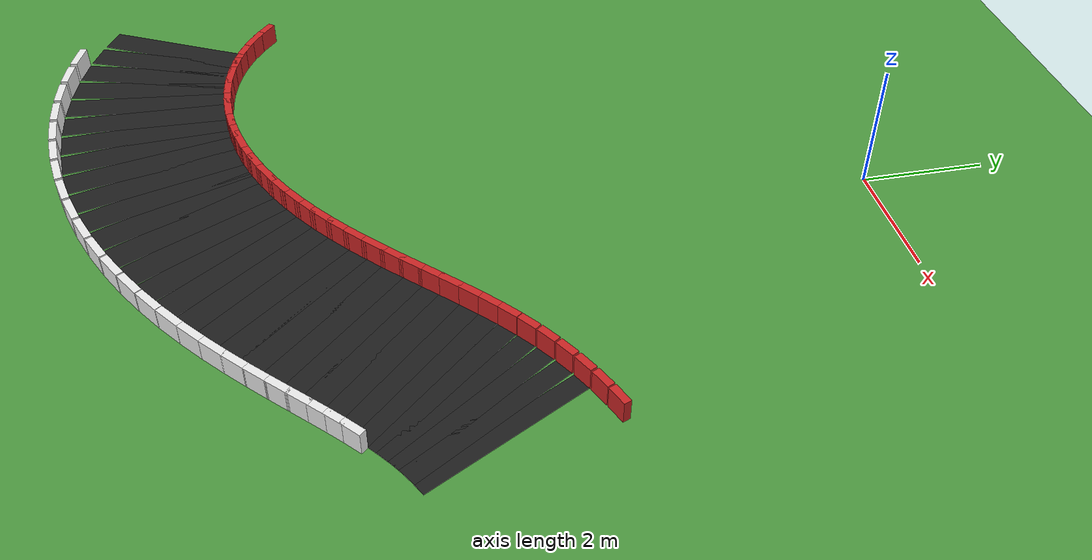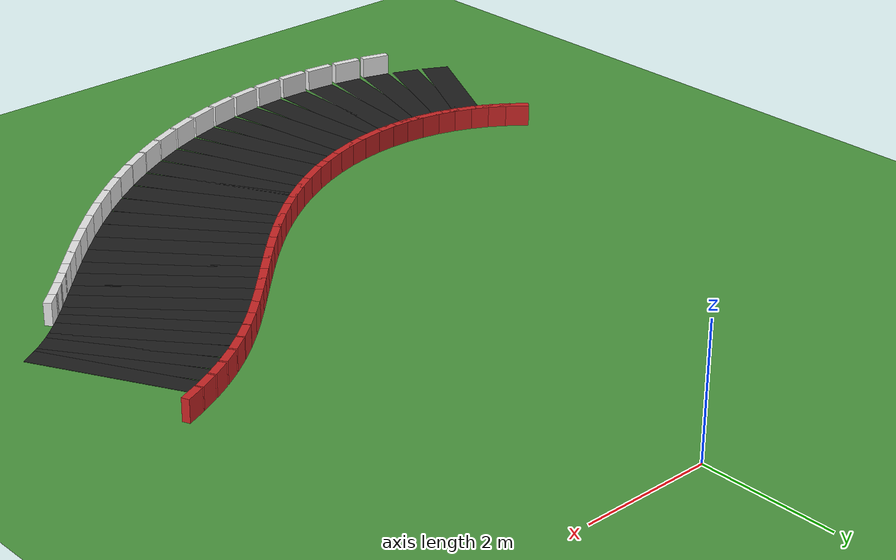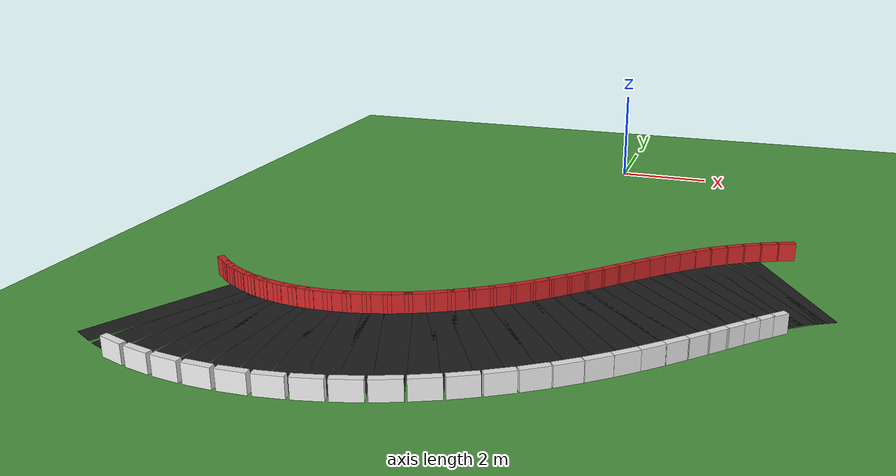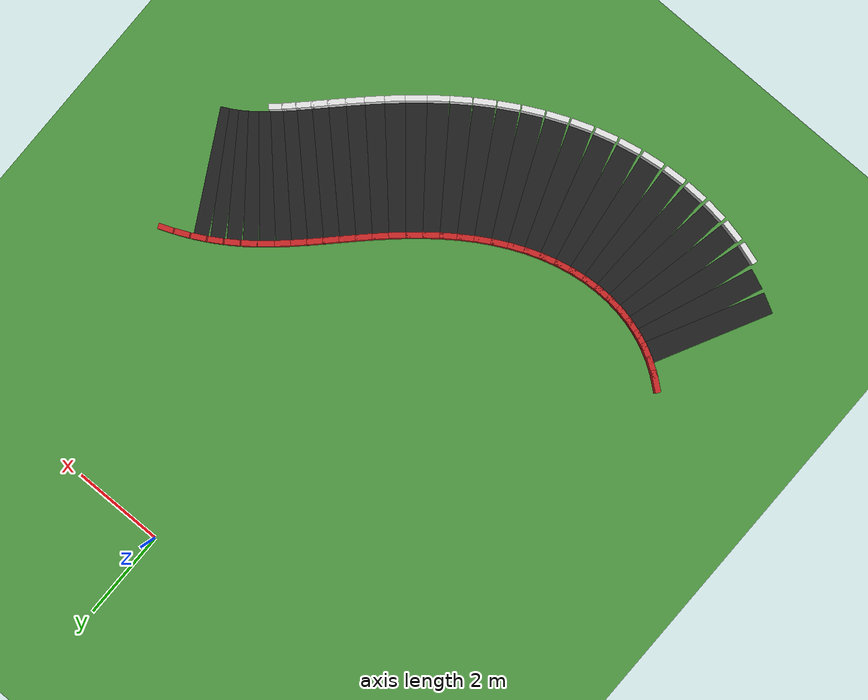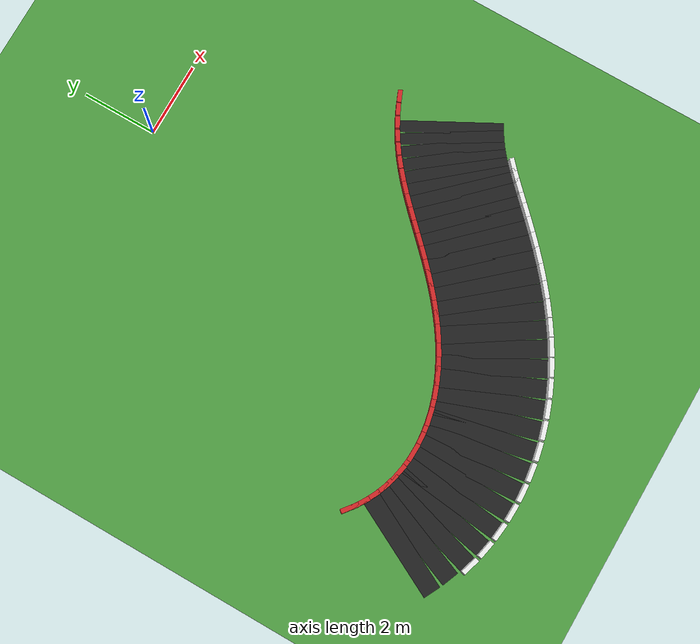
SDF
<sdf version="1.7">
 <world name="rl_track">
  <include><uri>model://sun</uri></include>
  <model name="ground">
   <static>true</static>
   <link name="link">
    <collision name="collision">
     <geometry><plane><normal>0 0 1</normal><size>40 40</size></plane></geometry>
    </collision>
    <visual name="visual">
     <geometry><plane><normal>0 0 1</normal><size>40 40</size></plane></geometry>
     <material>
      <script><uri>file://media/materials/scripts/gazebo.material</uri><name>Gazebo/Grass</name></script>
     </material>
    </visual>
   </link>
  </model>
  <model name="track">
   <static>true</static>
   <link name="outer_wall_118">
    <pose>-5.812078 -9.177187 0.175000 0 0 -0.663664682</pose>
    <collision name="collision">
     <geometry><box><size>0.479884 0.120000 0.350000</size></box></geometry>
     <surface><contact><ode><kp>1000000</kp><kd>10</kd></ode></contact></surface>
    </collision>
    <visual name="visual">
     <geometry><box><size>0.479884 0.120000 0.350000</size></box></geometry>
     <material>
      <script><uri>file://media/materials/scripts/gazebo.material</uri><name>Gazebo/Red</name></script>
     </material>
    </visual>
   </link>
   <link name="outer_wall_119">
    <pose>-5.569307 -9.349435 0.175000 0 0 -0.570401477</pose>
    <collision name="collision">
     <geometry><box><size>0.479294 0.120000 0.350000</size></box></geometry>
     <surface><contact><ode><kp>1000000</kp><kd>10</kd></ode></contact></surface>
    </collision>
    <visual name="visual">
     <geometry><box><size>0.479294 0.120000 0.350000</size></box></geometry>
     <material>
      <script><uri>file://media/materials/scripts/gazebo.material</uri><name>Gazebo/Red</name></script>
     </material>
    </visual>
   </link>
   <link name="road_120">
    <pose>-5.959293 -10.750622 0.003000 0 0 -0.476796075</pose>
    <visual name="visual">
     <geometry><box><size>0.469294 2.700000 0.006000</size></box></geometry>
     <material>
      <script><uri>file://media/materials/scripts/gazebo.material</uri><name>Gazebo/Black</name></script>
     </material>
    </visual>
   </link>
   <link name="outer_wall_120">
    <pose>-5.312194 -9.497879 0.175000 0 0 -0.476796075</pose>
    <collision name="collision">
     <geometry><box><size>0.479294 0.120000 0.350000</size></box></geometry>
     <surface><contact><ode><kp>1000000</kp><kd>10</kd></ode></contact></surface>
    </collision>
    <visual name="visual">
     <geometry><box><size>0.479294 0.120000 0.350000</size></box></geometry>
     <material>
      <script><uri>file://media/materials/scripts/gazebo.material</uri><name>Gazebo/Red</name></script>
     </material>
    </visual>
   </link>
   <link name="road_121">
    <pose>-5.569259 -10.929562 0.003000 0 0 -0.383532870</pose>
    <visual name="visual">
     <geometry><box><size>0.469884 2.700000 0.006000</size></box></geometry>
     <material>
      <script><uri>file://media/materials/scripts/gazebo.material</uri><name>Gazebo/Black</name></script>
     </material>
    </visual>
   </link>
   <link name="outer_wall_121">
    <pose>-5.041638 -9.622000 0.175000 0 0 -0.383532870</pose>
    <collision name="collision">
     <geometry><box><size>0.479884 0.120000 0.350000</size></box></geometry>
     <surface><contact><ode><kp>1000000</kp><kd>10</kd></ode></contact></surface>
    </collision>
    <visual name="visual">
     <geometry><box><size>0.479884 0.120000 0.350000</size></box></geometry>
     <material>
      <script><uri>file://media/materials/scripts/gazebo.material</uri><name>Gazebo/Red</name></script>
     </material>
    </visual>
   </link>
   <link name="road_122">
    <pose>-5.163503 -11.071882 0.003000 0 0 -0.291281226</pose>
    <visual name="visual">
     <geometry><box><size>0.471014 2.700000 0.006000</size></box></geometry>
     <material>
      <script><uri>file://media/materials/scripts/gazebo.material</uri><name>Gazebo/Black</name></script>
     </material>
    </visual>
   </link>
   <link name="inner_wall_122">
    <pose>-5.568427 -12.422488 0.175000 0 0 -0.291281226</pose>
    <collision name="collision">
     <geometry><box><size>0.481014 0.120000 0.350000</size></box></geometry>
     <surface><contact><ode><kp>1000000</kp><kd>10</kd></ode></contact></surface>
    </collision>
    <visual name="visual">
     <geometry><box><size>0.481014 0.120000 0.350000</size></box></geometry>
     <material>
      <script><uri>file://media/materials/scripts/gazebo.material</uri><name>Gazebo/White</name></script>
     </material>
    </visual>
   </link>
   <link name="outer_wall_122">
    <pose>-4.758580 -9.721276 0.175000 0 0 -0.291281226</pose>
    <collision name="collision">
     <geometry><box><size>0.481014 0.120000 0.350000</size></box></geometry>
     <surface><contact><ode><kp>1000000</kp><kd>10</kd></ode></contact></surface>
    </collision>
    <visual name="visual">
     <geometry><box><size>0.481014 0.120000 0.350000</size></box></geometry>
     <material>
      <script><uri>file://media/materials/scripts/gazebo.material</uri><name>Gazebo/Red</name></script>
     </material>
    </visual>
   </link>
   <link name="road_123">
    <pose>-4.745123 -11.176883 0.003000 0 0 -0.200667479</pose>
    <visual name="visual">
     <geometry><box><size>0.472582 2.700000 0.006000</size></box></geometry>
     <material>
      <script><uri>file://media/materials/scripts/gazebo.material</uri><name>Gazebo/Black</name></script>
     </material>
    </visual>
   </link>
   <link name="inner_wall_123">
    <pose>-5.026169 -12.558590 0.175000 0 0 -0.200667479</pose>
    <collision name="collision">
     <geometry><box><size>0.482582 0.120000 0.350000</size></box></geometry>
     <surface><contact><ode><kp>1000000</kp><kd>10</kd></ode></contact></surface>
    </collision>
    <visual name="visual">
     <geometry><box><size>0.482582 0.120000 0.350000</size></box></geometry>
     <material>
      <script><uri>file://media/materials/scripts/gazebo.material</uri><name>Gazebo/White</name></script>
     </material>
    </visual>
   </link>
   <link name="outer_wall_123">
    <pose>-4.464077 -9.795177 0.175000 0 0 -0.200667479</pose>
    <collision name="collision">
     <geometry><box><size>0.482582 0.120000 0.350000</size></box></geometry>
     <surface><contact><ode><kp>1000000</kp><kd>10</kd></ode></contact></surface>
    </collision>
    <visual name="visual">
     <geometry><box><size>0.482582 0.120000 0.350000</size></box></geometry>
     <material>
      <script><uri>file://media/materials/scripts/gazebo.material</uri><name>Gazebo/Red</name></script>
     </material>
    </visual>
   </link>
   <link name="road_124">
    <pose>-4.317315 -11.244328 0.003000 0 0 -0.112252660</pose>
    <visual name="visual">
     <geometry><box><size>0.474449 2.700000 0.006000</size></box></geometry>
     <material>
      <script><uri>file://media/materials/scripts/gazebo.material</uri><name>Gazebo/Black</name></script>
     </material>
    </visual>
   </link>
   <link name="inner_wall_124">
    <pose>-4.475259 -12.645454 0.175000 0 0 -0.112252660</pose>
    <collision name="collision">
     <geometry><box><size>0.484449 0.120000 0.350000</size></box></geometry>
     <surface><contact><ode><kp>1000000</kp><kd>10</kd></ode></contact></surface>
    </collision>
    <visual name="visual">
     <geometry><box><size>0.484449 0.120000 0.350000</size></box></geometry>
     <material>
      <script><uri>file://media/materials/scripts/gazebo.material</uri><name>Gazebo/White</name></script>
     </material>
    </visual>
   </link>
   <link name="outer_wall_124">
    <pose>-4.159371 -9.843202 0.175000 0 0 -0.112252660</pose>
    <collision name="collision">
     <geometry><box><size>0.484449 0.120000 0.350000</size></box></geometry>
     <surface><contact><ode><kp>1000000</kp><kd>10</kd></ode></contact></surface>
    </collision>
    <visual name="visual">
     <geometry><box><size>0.484449 0.120000 0.350000</size></box></geometry>
     <material>
      <script><uri>file://media/materials/scripts/gazebo.material</uri><name>Gazebo/Red</name></script>
     </material>
    </visual>
   </link>
   <link name="road_125">
    <pose>-3.883314 -11.274447 0.003000 0 0 -0.026518333</pose>
    <visual name="visual">
     <geometry><box><size>0.476441 2.700000 0.006000</size></box></geometry>
     <material>
      <script><uri>file://media/materials/scripts/gazebo.material</uri><name>Gazebo/Black</name></script>
     </material>
    </visual>
   </link>
   <link name="inner_wall_125">
    <pose>-3.920700 -12.683951 0.175000 0 0 -0.026518333</pose>
    <collision name="collision">
     <geometry><box><size>0.486441 0.120000 0.350000</size></box></geometry>
     <surface><contact><ode><kp>1000000</kp><kd>10</kd></ode></contact></surface>
    </collision>
    <visual name="visual">
     <geometry><box><size>0.486441 0.120000 0.350000</size></box></geometry>
     <material>
      <script><uri>file://media/materials/scripts/gazebo.material</uri><name>Gazebo/White</name></script>
     </material>
    </visual>
   </link>
   <link name="outer_wall_125">
    <pose>-3.845927 -9.864943 0.175000 0 0 -0.026518333</pose>
    <collision name="collision">
     <geometry><box><size>0.486441 0.120000 0.350000</size></box></geometry>
     <surface><contact><ode><kp>1000000</kp><kd>10</kd></ode></contact></surface>
    </collision>
    <visual name="visual">
     <geometry><box><size>0.486441 0.120000 0.350000</size></box></geometry>
     <material>
      <script><uri>file://media/materials/scripts/gazebo.material</uri><name>Gazebo/Red</name></script>
     </material>
    </visual>
   </link>
   <link name="road_126">
    <pose>-3.446336 -11.267935 0.003000 0 0 0.056138654</pose>
    <visual name="visual">
     <geometry><box><size>0.478358 2.700000 0.006000</size></box></geometry>
     <material>
      <script><uri>file://media/materials/scripts/gazebo.material</uri><name>Gazebo/Black</name></script>
     </material>
    </visual>
   </link>
   <link name="inner_wall_126">
    <pose>-3.367222 -12.675714 0.175000 0 0 0.056138654</pose>
    <collision name="collision">
     <geometry><box><size>0.488358 0.120000 0.350000</size></box></geometry>
     <surface><contact><ode><kp>1000000</kp><kd>10</kd></ode></contact></surface>
    </collision>
    <visual name="visual">
     <geometry><box><size>0.488358 0.120000 0.350000</size></box></geometry>
     <material>
      <script><uri>file://media/materials/scripts/gazebo.material</uri><name>Gazebo/White</name></script>
     </material>
    </visual>
   </link>
   <link name="outer_wall_126">
    <pose>-3.525450 -9.860156 0.175000 0 0 0.056138654</pose>
    <collision name="collision">
     <geometry><box><size>0.488358 0.120000 0.350000</size></box></geometry>
     <surface><contact><ode><kp>1000000</kp><kd>10</kd></ode></contact></surface>
    </collision>
    <visual name="visual">
     <geometry><box><size>0.488358 0.120000 0.350000</size></box></geometry>
     <material>
      <script><uri>file://media/materials/scripts/gazebo.material</uri><name>Gazebo/Red</name></script>
     </material>
    </visual>
   </link>
   <link name="road_127">
    <pose>-3.009519 -11.225940 0.003000 0 0 0.135403178</pose>
    <visual name="visual">
     <geometry><box><size>0.479992 2.700000 0.006000</size></box></geometry>
     <material>
      <script><uri>file://media/materials/scripts/gazebo.material</uri><name>Gazebo/Black</name></script>
     </material>
    </visual>
   </link>
   <link name="inner_wall_127">
    <pose>-2.819184 -12.623034 0.175000 0 0 0.135403178</pose>
    <collision name="collision">
     <geometry><box><size>0.489992 0.120000 0.350000</size></box></geometry>
     <surface><contact><ode><kp>1000000</kp><kd>10</kd></ode></contact></surface>
    </collision>
    <visual name="visual">
     <geometry><box><size>0.489992 0.120000 0.350000</size></box></geometry>
     <material>
      <script><uri>file://media/materials/scripts/gazebo.material</uri><name>Gazebo/White</name></script>
     </material>
    </visual>
   </link>
   <link name="outer_wall_127">
    <pose>-3.199855 -9.828846 0.175000 0 0 0.135403178</pose>
    <collision name="collision">
     <geometry><box><size>0.489992 0.120000 0.350000</size></box></geometry>
     <surface><contact><ode><kp>1000000</kp><kd>10</kd></ode></contact></surface>
    </collision>
    <visual name="visual">
     <geometry><box><size>0.489992 0.120000 0.350000</size></box></geometry>
     <material>
      <script><uri>file://media/materials/scripts/gazebo.material</uri><name>Gazebo/Red</name></script>
     </material>
    </visual>
   </link>
   <link name="road_128">
    <pose>-2.575865 -11.150041 0.003000 0 0 0.211032286</pose>
    <visual name="visual">
     <geometry><box><size>0.481129 2.700000 0.006000</size></box></geometry>
     <material>
      <script><uri>file://media/materials/scripts/gazebo.material</uri><name>Gazebo/Black</name></script>
     </material>
    </visual>
   </link>
   <link name="inner_wall_128">
    <pose>-2.280514 -12.528761 0.175000 0 0 0.211032286</pose>
    <collision name="collision">
     <geometry><box><size>0.491129 0.120000 0.350000</size></box></geometry>
     <surface><contact><ode><kp>1000000</kp><kd>10</kd></ode></contact></surface>
    </collision>
    <visual name="visual">
     <geometry><box><size>0.491129 0.120000 0.350000</size></box></geometry>
     <material>
      <script><uri>file://media/materials/scripts/gazebo.material</uri><name>Gazebo/White</name></script>
     </material>
    </visual>
   </link>
   <link name="outer_wall_128">
    <pose>-2.871217 -9.771322 0.175000 0 0 0.211032286</pose>
    <collision name="collision">
     <geometry><box><size>0.491129 0.120000 0.350000</size></box></geometry>
     <surface><contact><ode><kp>1000000</kp><kd>10</kd></ode></contact></surface>
    </collision>
    <visual name="visual">
     <geometry><box><size>0.491129 0.120000 0.350000</size></box></geometry>
     <material>
      <script><uri>file://media/materials/scripts/gazebo.material</uri><name>Gazebo/Red</name></script>
     </material>
    </visual>
   </link>
   <link name="road_129">
    <pose>-2.148186 -11.042223 0.003000 0 0 0.282841160</pose>
    <visual name="visual">
     <geometry><box><size>0.481562 2.700000 0.006000</size></box></geometry>
     <material>
      <script><uri>file://media/materials/scripts/gazebo.material</uri><name>Gazebo/Black</name></script>
     </material>
    </visual>
   </link>
   <link name="inner_wall_129">
    <pose>-1.754676 -12.396199 0.175000 0 0 0.282841160</pose>
    <collision name="collision">
     <geometry><box><size>0.491562 0.120000 0.350000</size></box></geometry>
     <surface><contact><ode><kp>1000000</kp><kd>10</kd></ode></contact></surface>
    </collision>
    <visual name="visual">
     <geometry><box><size>0.491562 0.120000 0.350000</size></box></geometry>
     <material>
      <script><uri>file://media/materials/scripts/gazebo.material</uri><name>Gazebo/White</name></script>
     </material>
    </visual>
   </link>
   <link name="outer_wall_129">
    <pose>-2.541695 -9.688247 0.175000 0 0 0.282841160</pose>
    <collision name="collision">
     <geometry><box><size>0.491562 0.120000 0.350000</size></box></geometry>
     <surface><contact><ode><kp>1000000</kp><kd>10</kd></ode></contact></surface>
    </collision>
    <visual name="visual">
     <geometry><box><size>0.491562 0.120000 0.350000</size></box></geometry>
     <material>
      <script><uri>file://media/materials/scripts/gazebo.material</uri><name>Gazebo/Red</name></script>
     </material>
    </visual>
   </link>
   <link name="road_130">
    <pose>-1.729052 -10.904839 0.003000 0 0 0.350686587</pose>
    <visual name="visual">
     <geometry><box><size>0.481097 2.700000 0.006000</size></box></geometry>
     <material>
      <script><uri>file://media/materials/scripts/gazebo.material</uri><name>Gazebo/Black</name></script>
     </material>
    </visual>
   </link>
   <link name="inner_wall_130">
    <pose>-1.244657 -12.229022 0.175000 0 0 0.350686587</pose>
    <collision name="collision">
     <geometry><box><size>0.491097 0.120000 0.350000</size></box></geometry>
     <surface><contact><ode><kp>1000000</kp><kd>10</kd></ode></contact></surface>
    </collision>
    <visual name="visual">
     <geometry><box><size>0.491097 0.120000 0.350000</size></box></geometry>
     <material>
      <script><uri>file://media/materials/scripts/gazebo.material</uri><name>Gazebo/White</name></script>
     </material>
    </visual>
   </link>
   <link name="outer_wall_130">
    <pose>-2.213447 -9.580655 0.175000 0 0 0.350686587</pose>
    <collision name="collision">
     <geometry><box><size>0.491097 0.120000 0.350000</size></box></geometry>
     <surface><contact><ode><kp>1000000</kp><kd>10</kd></ode></contact></surface>
    </collision>
    <visual name="visual">
     <geometry><box><size>0.491097 0.120000 0.350000</size></box></geometry>
     <material>
      <script><uri>file://media/materials/scripts/gazebo.material</uri><name>Gazebo/Red</name></script>
     </material>
    </visual>
   </link>
   <link name="road_131">
    <pose>-1.320752 -10.740568 0.003000 0 0 0.414449527</pose>
    <visual name="visual">
     <geometry><box><size>0.479564 2.700000 0.006000</size></box></geometry>
     <material>
      <script><uri>file://media/materials/scripts/gazebo.material</uri><name>Gazebo/Black</name></script>
     </material>
    </visual>
   </link>
   <link name="inner_wall_131">
    <pose>-0.752964 -12.031194 0.175000 0 0 0.414449527</pose>
    <collision name="collision">
     <geometry><box><size>0.489564 0.120000 0.350000</size></box></geometry>
     <surface><contact><ode><kp>1000000</kp><kd>10</kd></ode></contact></surface>
    </collision>
    <visual name="visual">
     <geometry><box><size>0.489564 0.120000 0.350000</size></box></geometry>
     <material>
      <script><uri>file://media/materials/scripts/gazebo.material</uri><name>Gazebo/White</name></script>
     </material>
    </visual>
   </link>
   <link name="outer_wall_131">
    <pose>-1.888539 -9.449941 0.175000 0 0 0.414449527</pose>
    <collision name="collision">
     <geometry><box><size>0.489564 0.120000 0.350000</size></box></geometry>
     <surface><contact><ode><kp>1000000</kp><kd>10</kd></ode></contact></surface>
    </collision>
    <visual name="visual">
     <geometry><box><size>0.489564 0.120000 0.350000</size></box></geometry>
     <material>
      <script><uri>file://media/materials/scripts/gazebo.material</uri><name>Gazebo/Red</name></script>
     </material>
    </visual>
   </link>
   <link name="road_132">
    <pose>-0.925250 -10.552369 0.003000 0 0 0.474017839</pose>
    <visual name="visual">
     <geometry><box><size>0.476818 2.700000 0.006000</size></box></geometry>
     <material>
      <script><uri>file://media/materials/scripts/gazebo.material</uri><name>Gazebo/Black</name></script>
     </material>
    </visual>
   </link>
   <link name="inner_wall_132">
    <pose>-0.281634 -11.806904 0.175000 0 0 0.474017839</pose>
    <collision name="collision">
     <geometry><box><size>0.486818 0.120000 0.350000</size></box></geometry>
     <surface><contact><ode><kp>1000000</kp><kd>10</kd></ode></contact></surface>
    </collision>
    <visual name="visual">
     <geometry><box><size>0.486818 0.120000 0.350000</size></box></geometry>
     <material>
      <script><uri>file://media/materials/scripts/gazebo.material</uri><name>Gazebo/White</name></script>
     </material>
    </visual>
   </link>
   <link name="outer_wall_132">
    <pose>-1.568865 -9.297833 0.175000 0 0 0.474017839</pose>
    <collision name="collision">
     <geometry><box><size>0.486818 0.120000 0.350000</size></box></geometry>
     <surface><contact><ode><kp>1000000</kp><kd>10</kd></ode></contact></surface>
    </collision>
    <visual name="visual">
     <geometry><box><size>0.486818 0.120000 0.350000</size></box></geometry>
     <material>
      <script><uri>file://media/materials/scripts/gazebo.material</uri><name>Gazebo/Red</name></script>
     </material>
    </visual>
   </link>
   <link name="road_133">
    <pose>-0.544154 -10.343425 0.003000 0 0 0.529269729</pose>
    <visual name="visual">
     <geometry><box><size>0.472747 2.700000 0.006000</size></box></geometry>
     <material>
      <script><uri>file://media/materials/scripts/gazebo.material</uri><name>Gazebo/Black</name></script>
     </material>
    </visual>
   </link>
   <link name="inner_wall_133">
    <pose>0.167760 -11.560503 0.175000 0 0 0.529269729</pose>
    <collision name="collision">
     <geometry><box><size>0.482747 0.120000 0.350000</size></box></geometry>
     <surface><contact><ode><kp>1000000</kp><kd>10</kd></ode></contact></surface>
    </collision>
    <visual name="visual">
     <geometry><box><size>0.482747 0.120000 0.350000</size></box></geometry>
     <material>
      <script><uri>file://media/materials/scripts/gazebo.material</uri><name>Gazebo/White</name></script>
     </material>
    </visual>
   </link>
   <link name="outer_wall_133">
    <pose>-1.256067 -9.126347 0.175000 0 0 0.529269729</pose>
    <collision name="collision">
     <geometry><box><size>0.482747 0.120000 0.350000</size></box></geometry>
     <surface><contact><ode><kp>1000000</kp><kd>10</kd></ode></contact></surface>
    </collision>
    <visual name="visual">
     <geometry><box><size>0.482747 0.120000 0.350000</size></box></geometry>
     <material>
      <script><uri>file://media/materials/scripts/gazebo.material</uri><name>Gazebo/Red</name></script>
     </material>
    </visual>
   </link>
   <link name="road_134">
    <pose>-0.178693 -10.117089 0.003000 0 0 0.580058101</pose>
    <visual name="visual">
     <geometry><box><size>0.467274 2.700000 0.006000</size></box></geometry>
     <material>
      <script><uri>file://media/materials/scripts/gazebo.material</uri><name>Gazebo/Black</name></script>
     </material>
    </visual>
   </link>
   <link name="inner_wall_134">
    <pose>0.594090 -11.296456 0.175000 0 0 0.580058101</pose>
    <collision name="collision">
     <geometry><box><size>0.477274 0.120000 0.350000</size></box></geometry>
     <surface><contact><ode><kp>1000000</kp><kd>10</kd></ode></contact></surface>
    </collision>
    <visual name="visual">
     <geometry><box><size>0.477274 0.120000 0.350000</size></box></geometry>
     <material>
      <script><uri>file://media/materials/scripts/gazebo.material</uri><name>Gazebo/White</name></script>
     </material>
    </visual>
   </link>
   <link name="outer_wall_134">
    <pose>-0.951475 -8.937721 0.175000 0 0 0.580058101</pose>
    <collision name="collision">
     <geometry><box><size>0.477274 0.120000 0.350000</size></box></geometry>
     <surface><contact><ode><kp>1000000</kp><kd>10</kd></ode></contact></surface>
    </collision>
    <visual name="visual">
     <geometry><box><size>0.477274 0.120000 0.350000</size></box></geometry>
     <material>
      <script><uri>file://media/materials/scripts/gazebo.material</uri><name>Gazebo/Red</name></script>
     </material>
    </visual>
   </link>
   <link name="road_135">
    <pose>0.170302 -9.876820 0.003000 0 0 0.626195774</pose>
    <visual name="visual">
     <geometry><box><size>0.460363 2.700000 0.006000</size></box></geometry>
     <material>
      <script><uri>file://media/materials/scripts/gazebo.material</uri><name>Gazebo/Black</name></script>
     </material>
    </visual>
   </link>
   <link name="inner_wall_135">
    <pose>0.996656 -11.019290 0.175000 0 0 0.626195774</pose>
    <collision name="collision">
     <geometry><box><size>0.470363 0.120000 0.350000</size></box></geometry>
     <surface><contact><ode><kp>1000000</kp><kd>10</kd></ode></contact></surface>
    </collision>
    <visual name="visual">
     <geometry><box><size>0.470363 0.120000 0.350000</size></box></geometry>
     <material>
      <script><uri>file://media/materials/scripts/gazebo.material</uri><name>Gazebo/White</name></script>
     </material>
    </visual>
   </link>
   <link name="outer_wall_135">
    <pose>-0.656052 -8.734349 0.175000 0 0 0.626195774</pose>
    <collision name="collision">
     <geometry><box><size>0.470363 0.120000 0.350000</size></box></geometry>
     <surface><contact><ode><kp>1000000</kp><kd>10</kd></ode></contact></surface>
    </collision>
    <visual name="visual">
     <geometry><box><size>0.470363 0.120000 0.350000</size></box></geometry>
     <material>
      <script><uri>file://media/materials/scripts/gazebo.material</uri><name>Gazebo/Red</name></script>
     </material>
    </visual>
   </link>
   <link name="road_136">
    <pose>0.502406 -9.626124 0.003000 0 0 0.667441462</pose>
    <visual name="visual">
     <geometry><box><size>0.452019 2.700000 0.006000</size></box></geometry>
     <material>
      <script><uri>file://media/materials/scripts/gazebo.material</uri><name>Gazebo/Black</name></script>
     </material>
    </visual>
   </link>
   <link name="inner_wall_136">
    <pose>1.375166 -10.733549 0.175000 0 0 0.667441462</pose>
    <collision name="collision">
     <geometry><box><size>0.462019 0.120000 0.350000</size></box></geometry>
     <surface><contact><ode><kp>1000000</kp><kd>10</kd></ode></contact></surface>
    </collision>
    <visual name="visual">
     <geometry><box><size>0.462019 0.120000 0.350000</size></box></geometry>
     <material>
      <script><uri>file://media/materials/scripts/gazebo.material</uri><name>Gazebo/White</name></script>
     </material>
    </visual>
   </link>
   <link name="outer_wall_136">
    <pose>-0.370354 -8.518699 0.175000 0 0 0.667441462</pose>
    <collision name="collision">
     <geometry><box><size>0.462019 0.120000 0.350000</size></box></geometry>
     <surface><contact><ode><kp>1000000</kp><kd>10</kd></ode></contact></surface>
    </collision>
    <visual name="visual">
     <geometry><box><size>0.462019 0.120000 0.350000</size></box></geometry>
     <material>
      <script><uri>file://media/materials/scripts/gazebo.material</uri><name>Gazebo/Red</name></script>
     </material>
    </visual>
   </link>
   <link name="road_137">
    <pose>0.817600 -9.368491 0.003000 0 0 0.703486577</pose>
    <visual name="visual">
     <geometry><box><size>0.442292 2.700000 0.006000</size></box></geometry>
     <material>
      <script><uri>file://media/materials/scripts/gazebo.material</uri><name>Gazebo/Black</name></script>
     </material>
    </visual>
   </link>
   <link name="inner_wall_137">
    <pose>1.729701 -10.443745 0.175000 0 0 0.703486577</pose>
    <collision name="collision">
     <geometry><box><size>0.452292 0.120000 0.350000</size></box></geometry>
     <surface><contact><ode><kp>1000000</kp><kd>10</kd></ode></contact></surface>
    </collision>
    <visual name="visual">
     <geometry><box><size>0.452292 0.120000 0.350000</size></box></geometry>
     <material>
      <script><uri>file://media/materials/scripts/gazebo.material</uri><name>Gazebo/White</name></script>
     </material>
    </visual>
   </link>
   <link name="outer_wall_137">
    <pose>-0.094502 -8.293237 0.175000 0 0 0.703486577</pose>
    <collision name="collision">
     <geometry><box><size>0.452292 0.120000 0.350000</size></box></geometry>
     <surface><contact><ode><kp>1000000</kp><kd>10</kd></ode></contact></surface>
    </collision>
    <visual name="visual">
     <geometry><box><size>0.452292 0.120000 0.350000</size></box></geometry>
     <material>
      <script><uri>file://media/materials/scripts/gazebo.material</uri><name>Gazebo/Red</name></script>
     </material>
    </visual>
   </link>
   <link name="road_138">
    <pose>1.116264 -9.107332 0.003000 0 0 0.733943319</pose>
    <visual name="visual">
     <geometry><box><size>0.431283 2.700000 0.006000</size></box></geometry>
     <material>
      <script><uri>file://media/materials/scripts/gazebo.material</uri><name>Gazebo/Black</name></script>
     </material>
    </visual>
   </link>
   <link name="inner_wall_138">
    <pose>2.060686 -10.154312 0.175000 0 0 0.733943319</pose>
    <collision name="collision">
     <geometry><box><size>0.441283 0.120000 0.350000</size></box></geometry>
     <surface><contact><ode><kp>1000000</kp><kd>10</kd></ode></contact></surface>
    </collision>
    <visual name="visual">
     <geometry><box><size>0.441283 0.120000 0.350000</size></box></geometry>
     <material>
      <script><uri>file://media/materials/scripts/gazebo.material</uri><name>Gazebo/White</name></script>
     </material>
    </visual>
   </link>
   <link name="outer_wall_138">
    <pose>0.171842 -8.060352 0.175000 0 0 0.733943319</pose>
    <collision name="collision">
     <geometry><box><size>0.441283 0.120000 0.350000</size></box></geometry>
     <surface><contact><ode><kp>1000000</kp><kd>10</kd></ode></contact></surface>
    </collision>
    <visual name="visual">
     <geometry><box><size>0.441283 0.120000 0.350000</size></box></geometry>
     <material>
      <script><uri>file://media/materials/scripts/gazebo.material</uri><name>Gazebo/Red</name></script>
     </material>
    </visual>
   </link>
   <link name="road_139">
    <pose>1.399161 -8.845920 0.003000 0 0 0.758335308</pose>
    <visual name="visual">
     <geometry><box><size>0.419143 2.700000 0.006000</size></box></geometry>
     <material>
      <script><uri>file://media/materials/scripts/gazebo.material</uri><name>Gazebo/Black</name></script>
     </material>
    </visual>
   </link>
   <link name="inner_wall_139">
    <pose>2.368837 -9.869554 0.175000 0 0 0.758335308</pose>
    <collision name="collision">
     <geometry><box><size>0.429143 0.120000 0.350000</size></box></geometry>
     <surface><contact><ode><kp>1000000</kp><kd>10</kd></ode></contact></surface>
    </collision>
    <visual name="visual">
     <geometry><box><size>0.429143 0.120000 0.350000</size></box></geometry>
     <material>
      <script><uri>file://media/materials/scripts/gazebo.material</uri><name>Gazebo/White</name></script>
     </material>
    </visual>
   </link>
   <link name="outer_wall_139">
    <pose>0.429484 -7.822285 0.175000 0 0 0.758335308</pose>
    <collision name="collision">
     <geometry><box><size>0.429143 0.120000 0.350000</size></box></geometry>
     <surface><contact><ode><kp>1000000</kp><kd>10</kd></ode></contact></surface>
    </collision>
    <visual name="visual">
     <geometry><box><size>0.429143 0.120000 0.350000</size></box></geometry>
     <material>
      <script><uri>file://media/materials/scripts/gazebo.material</uri><name>Gazebo/Red</name></script>
     </material>
    </visual>
   </link>
   <link name="road_140">
    <pose>1.667413 -8.587330 0.003000 0 0 0.776093320</pose>
    <visual name="visual">
     <geometry><box><size>0.406078 2.700000 0.006000</size></box></geometry>
     <material>
      <script><uri>file://media/materials/scripts/gazebo.material</uri><name>Gazebo/Black</name></script>
     </material>
    </visual>
   </link>
   <link name="inner_wall_140">
    <pose>2.655114 -9.593585 0.175000 0 0 0.776093320</pose>
    <collision name="collision">
     <geometry><box><size>0.416078 0.120000 0.350000</size></box></geometry>
     <surface><contact><ode><kp>1000000</kp><kd>10</kd></ode></contact></surface>
    </collision>
    <visual name="visual">
     <geometry><box><size>0.416078 0.120000 0.350000</size></box></geometry>
     <material>
      <script><uri>file://media/materials/scripts/gazebo.material</uri><name>Gazebo/White</name></script>
     </material>
    </visual>
   </link>
   <link name="outer_wall_140">
    <pose>0.679713 -7.581076 0.175000 0 0 0.776093320</pose>
    <collision name="collision">
     <geometry><box><size>0.416078 0.120000 0.350000</size></box></geometry>
     <surface><contact><ode><kp>1000000</kp><kd>10</kd></ode></contact></surface>
    </collision>
    <visual name="visual">
     <geometry><box><size>0.416078 0.120000 0.350000</size></box></geometry>
     <material>
      <script><uri>file://media/materials/scripts/gazebo.material</uri><name>Gazebo/Red</name></script>
     </material>
    </visual>
   </link>
   <link name="road_141">
    <pose>1.922470 -8.334392 0.003000 0 0 0.786560766</pose>
    <visual name="visual">
     <geometry><box><size>0.392353 2.700000 0.006000</size></box></geometry>
     <material>
      <script><uri>file://media/materials/scripts/gazebo.material</uri><name>Gazebo/Black</name></script>
     </material>
    </visual>
   </link>
   <link name="inner_wall_141">
    <pose>2.920649 -9.330253 0.175000 0 0 0.786560766</pose>
    <collision name="collision">
     <geometry><box><size>0.402353 0.120000 0.350000</size></box></geometry>
     <surface><contact><ode><kp>1000000</kp><kd>10</kd></ode></contact></surface>
    </collision>
    <visual name="visual">
     <geometry><box><size>0.402353 0.120000 0.350000</size></box></geometry>
     <material>
      <script><uri>file://media/materials/scripts/gazebo.material</uri><name>Gazebo/White</name></script>
     </material>
    </visual>
   </link>
   <link name="outer_wall_141">
    <pose>0.924291 -7.338531 0.175000 0 0 0.786560766</pose>
    <collision name="collision">
     <geometry><box><size>0.402353 0.120000 0.350000</size></box></geometry>
     <surface><contact><ode><kp>1000000</kp><kd>10</kd></ode></contact></surface>
    </collision>
    <visual name="visual">
     <geometry><box><size>0.402353 0.120000 0.350000</size></box></geometry>
     <material>
      <script><uri>file://media/materials/scripts/gazebo.material</uri><name>Gazebo/Red</name></script>
     </material>
    </visual>
   </link>
   <link name="road_142">
    <pose>2.166073 -8.089634 0.003000 0 0 0.789016527</pose>
    <visual name="visual">
     <geometry><box><size>0.378296 2.700000 0.006000</size></box></geometry>
     <material>
      <script><uri>file://media/materials/scripts/gazebo.material</uri><name>Gazebo/Black</name></script>
     </material>
    </visual>
   </link>
   <link name="inner_wall_142">
    <pose>3.166695 -9.083041 0.175000 0 0 0.789016527</pose>
    <collision name="collision">
     <geometry><box><size>0.388296 0.120000 0.350000</size></box></geometry>
     <surface><contact><ode><kp>1000000</kp><kd>10</kd></ode></contact></surface>
    </collision>
    <visual name="visual">
     <geometry><box><size>0.388296 0.120000 0.350000</size></box></geometry>
     <material>
      <script><uri>file://media/materials/scripts/gazebo.material</uri><name>Gazebo/White</name></script>
     </material>
    </visual>
   </link>
   <link name="outer_wall_142">
    <pose>1.165451 -7.096228 0.175000 0 0 0.789016527</pose>
    <collision name="collision">
     <geometry><box><size>0.388296 0.120000 0.350000</size></box></geometry>
     <surface><contact><ode><kp>1000000</kp><kd>10</kd></ode></contact></surface>
    </collision>
    <visual name="visual">
     <geometry><box><size>0.388296 0.120000 0.350000</size></box></geometry>
     <material>
      <script><uri>file://media/materials/scripts/gazebo.material</uri><name>Gazebo/Red</name></script>
     </material>
    </visual>
   </link>
   <link name="road_143">
    <pose>2.400208 -7.855247 0.003000 0 0 0.782726367</pose>
    <visual name="visual">
     <geometry><box><size>0.364298 2.700000 0.006000</size></box></geometry>
     <material>
      <script><uri>file://media/materials/scripts/gazebo.material</uri><name>Gazebo/Black</name></script>
     </material>
    </visual>
   </link>
   <link name="inner_wall_143">
    <pose>3.394561 -8.854928 0.175000 0 0 0.782726367</pose>
    <collision name="collision">
     <geometry><box><size>0.374298 0.120000 0.350000</size></box></geometry>
     <surface><contact><ode><kp>1000000</kp><kd>10</kd></ode></contact></surface>
    </collision>
    <visual name="visual">
     <geometry><box><size>0.374298 0.120000 0.350000</size></box></geometry>
     <material>
      <script><uri>file://media/materials/scripts/gazebo.material</uri><name>Gazebo/White</name></script>
     </material>
    </visual>
   </link>
   <link name="outer_wall_143">
    <pose>1.405854 -6.855566 0.175000 0 0 0.782726367</pose>
    <collision name="collision">
     <geometry><box><size>0.374298 0.120000 0.350000</size></box></geometry>
     <surface><contact><ode><kp>1000000</kp><kd>10</kd></ode></contact></surface>
    </collision>
    <visual name="visual">
     <geometry><box><size>0.374298 0.120000 0.350000</size></box></geometry>
     <material>
      <script><uri>file://media/materials/scripts/gazebo.material</uri><name>Gazebo/Red</name></script>
     </material>
    </visual>
   </link>
   <link name="road_144">
    <pose>2.627058 -7.633044 0.003000 0 0 0.767037228</pose>
    <visual name="visual">
     <geometry><box><size>0.350813 2.700000 0.006000</size></box></geometry>
     <material>
      <script><uri>file://media/materials/scripts/gazebo.material</uri><name>Gazebo/Black</name></script>
     </material>
    </visual>
   </link>
   <link name="inner_wall_144">
    <pose>3.605605 -8.648202 0.175000 0 0 0.767037228</pose>
    <collision name="collision">
     <geometry><box><size>0.360813 0.120000 0.350000</size></box></geometry>
     <surface><contact><ode><kp>1000000</kp><kd>10</kd></ode></contact></surface>
    </collision>
    <visual name="visual">
     <geometry><box><size>0.360813 0.120000 0.350000</size></box></geometry>
     <material>
      <script><uri>file://media/materials/scripts/gazebo.material</uri><name>Gazebo/White</name></script>
     </material>
    </visual>
   </link>
   <link name="outer_wall_144">
    <pose>1.648511 -6.617887 0.175000 0 0 0.767037228</pose>
    <collision name="collision">
     <geometry><box><size>0.360813 0.120000 0.350000</size></box></geometry>
     <surface><contact><ode><kp>1000000</kp><kd>10</kd></ode></contact></surface>
    </collision>
    <visual name="visual">
     <geometry><box><size>0.360813 0.120000 0.350000</size></box></geometry>
     <material>
      <script><uri>file://media/materials/scripts/gazebo.material</uri><name>Gazebo/Red</name></script>
     </material>
    </visual>
   </link>
   <link name="road_145">
    <pose>2.848953 -7.424437 0.003000 0 0 0.741527738</pose>
    <visual name="visual">
     <geometry><box><size>0.338349 2.700000 0.006000</size></box></geometry>
     <material>
      <script><uri>file://media/materials/scripts/gazebo.material</uri><name>Gazebo/Black</name></script>
     </material>
    </visual>
   </link>
   <link name="inner_wall_145">
    <pose>3.801288 -8.464224 0.175000 0 0 0.741527738</pose>
    <collision name="collision">
     <geometry><box><size>0.348349 0.120000 0.350000</size></box></geometry>
     <surface><contact><ode><kp>1000000</kp><kd>10</kd></ode></contact></surface>
    </collision>
    <visual name="visual">
     <geometry><box><size>0.348349 0.120000 0.350000</size></box></geometry>
     <material>
      <script><uri>file://media/materials/scripts/gazebo.material</uri><name>Gazebo/White</name></script>
     </material>
    </visual>
   </link>
   <link name="outer_wall_145">
    <pose>1.896617 -6.384650 0.175000 0 0 0.741527738</pose>
    <collision name="collision">
     <geometry><box><size>0.348349 0.120000 0.350000</size></box></geometry>
     <surface><contact><ode><kp>1000000</kp><kd>10</kd></ode></contact></surface>
    </collision>
    <visual name="visual">
     <geometry><box><size>0.348349 0.120000 0.350000</size></box></geometry>
     <material>
      <script><uri>file://media/materials/scripts/gazebo.material</uri><name>Gazebo/Red</name></script>
     </material>
    </visual>
   </link>
   <link name="road_146">
    <pose>3.068309 -7.230410 0.003000 0 0 0.706217119</pose>
    <visual name="visual">
     <geometry><box><size>0.327451 2.700000 0.006000</size></box></geometry>
     <material>
      <script><uri>file://media/materials/scripts/gazebo.material</uri><name>Gazebo/Black</name></script>
     </material>
    </visual>
   </link>
   <link name="outer_wall_146">
    <pose>2.153275 -6.157651 0.175000 0 0 0.706217119</pose>
    <collision name="collision">
     <geometry><box><size>0.337451 0.120000 0.350000</size></box></geometry>
     <surface><contact><ode><kp>1000000</kp><kd>10</kd></ode></contact></surface>
    </collision>
    <visual name="visual">
     <geometry><box><size>0.337451 0.120000 0.350000</size></box></geometry>
     <material>
      <script><uri>file://media/materials/scripts/gazebo.material</uri><name>Gazebo/Red</name></script>
     </material>
    </visual>
   </link>
   <link name="road_147">
    <pose>3.287575 -7.051513 0.003000 0 0 0.661806062</pose>
    <visual name="visual">
     <geometry><box><size>0.318662 2.700000 0.006000</size></box></geometry>
     <material>
      <script><uri>file://media/materials/scripts/gazebo.material</uri><name>Gazebo/Black</name></script>
     </material>
    </visual>
   </link>
   <link name="outer_wall_147">
    <pose>2.421069 -5.939187 0.175000 0 0 0.661806062</pose>
    <collision name="collision">
     <geometry><box><size>0.328662 0.120000 0.350000</size></box></geometry>
     <surface><contact><ode><kp>1000000</kp><kd>10</kd></ode></contact></surface>
    </collision>
    <visual name="visual">
     <geometry><box><size>0.328662 0.120000 0.350000</size></box></geometry>
     <material>
      <script><uri>file://media/materials/scripts/gazebo.material</uri><name>Gazebo/Red</name></script>
     </material>
    </visual>
   </link>
   <link name="road_148">
    <pose>3.509168 -6.887855 0.003000 0 0 0.609877483</pose>
    <visual name="visual">
     <geometry><box><size>0.312479 2.700000 0.006000</size></box></geometry>
     <material>
      <script><uri>file://media/materials/scripts/gazebo.material</uri><name>Gazebo/Black</name></script>
     </material>
    </visual>
   </link>
   <link name="outer_wall_148">
    <pose>2.701567 -5.732052 0.175000 0 0 0.609877483</pose>
    <collision name="collision">
     <geometry><box><size>0.322479 0.120000 0.350000</size></box></geometry>
     <surface><contact><ode><kp>1000000</kp><kd>10</kd></ode></contact></surface>
    </collision>
    <visual name="visual">
     <geometry><box><size>0.322479 0.120000 0.350000</size></box></geometry>
     <material>
      <script><uri>file://media/materials/scripts/gazebo.material</uri><name>Gazebo/Red</name></script>
     </material>
    </visual>
   </link>
   <link name="road_149">
    <pose>3.735423 -6.739108 0.003000 0 0 0.552945236</pose>
    <visual name="visual">
     <geometry><box><size>0.309282 2.700000 0.006000</size></box></geometry>
     <material>
      <script><uri>file://media/materials/scripts/gazebo.material</uri><name>Gazebo/Black</name></script>
     </material>
    </visual>
   </link>
   <link name="outer_wall_149">
    <pose>2.994897 -5.539225 0.175000 0 0 0.552945236</pose>
    <collision name="collision">
     <geometry><box><size>0.319282 0.120000 0.350000</size></box></geometry>
     <surface><contact><ode><kp>1000000</kp><kd>10</kd></ode></contact></surface>
    </collision>
    <visual name="visual">
     <geometry><box><size>0.319282 0.120000 0.350000</size></box></geometry>
     <material>
      <script><uri>file://media/materials/scripts/gazebo.material</uri><name>Gazebo/Red</name></script>
     </material>
    </visual>
   </link>
   <link name="road_150">
    <pose>3.968528 -6.604526 0.003000 0 0 0.494252315</pose>
    <visual name="visual">
     <geometry><box><size>0.309282 2.700000 0.006000</size></box></geometry>
     <material>
      <script><uri>file://media/materials/scripts/gazebo.material</uri><name>Gazebo/Black</name></script>
     </material>
    </visual>
   </link>
   <link name="outer_wall_150">
    <pose>3.299661 -5.363269 0.175000 0 0 0.494252315</pose>
    <collision name="collision">
     <geometry><box><size>0.319282 0.120000 0.350000</size></box></geometry>
     <surface><contact><ode><kp>1000000</kp><kd>10</kd></ode></contact></surface>
    </collision>
    <visual name="visual">
     <geometry><box><size>0.319282 0.120000 0.350000</size></box></geometry>
     <material>
      <script><uri>file://media/materials/scripts/gazebo.material</uri><name>Gazebo/Red</name></script>
     </material>
    </visual>
   </link>
   <link name="outer_wall_151">
    <pose>3.613319 -5.205652 0.175000 0 0 0.437320068</pose>
    <collision name="collision">
     <geometry><box><size>0.322479 0.120000 0.350000</size></box></geometry>
     <surface><contact><ode><kp>1000000</kp><kd>10</kd></ode></contact></surface>
    </collision>
    <visual name="visual">
     <geometry><box><size>0.322479 0.120000 0.350000</size></box></geometry>
     <material>
      <script><uri>file://media/materials/scripts/gazebo.material</uri><name>Gazebo/Red</name></script>
     </material>
    </visual>
   </link>
   <link name="outer_wall_152">
    <pose>3.932952 -5.066301 0.175000 0 0 0.385391489</pose>
    <collision name="collision">
     <geometry><box><size>0.328662 0.120000 0.350000</size></box></geometry>
     <surface><contact><ode><kp>1000000</kp><kd>10</kd></ode></contact></surface>
    </collision>
    <visual name="visual">
     <geometry><box><size>0.328662 0.120000 0.350000</size></box></geometry>
     <material>
      <script><uri>file://media/materials/scripts/gazebo.material</uri><name>Gazebo/Red</name></script>
     </material>
    </visual>
   </link>
  </model>
 </world>
</sdf>
